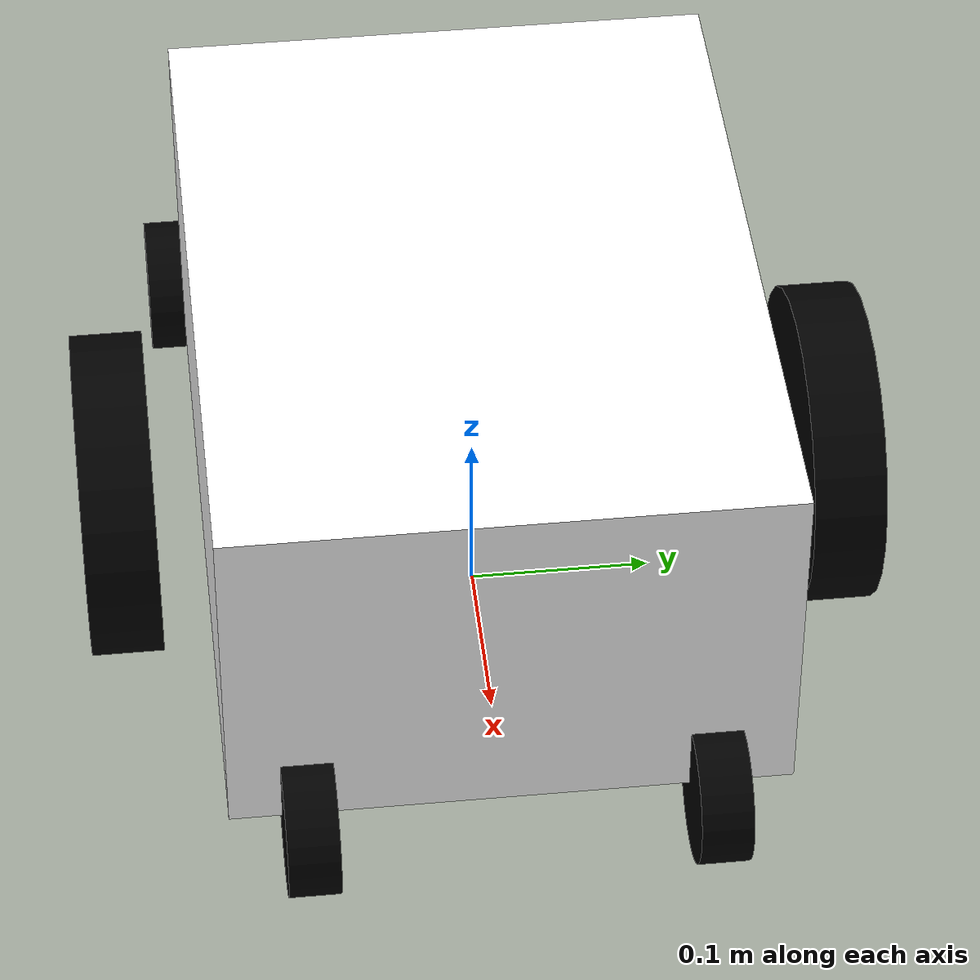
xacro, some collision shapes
<?xml version="1.0"?>

<robot xmlns:xacro="http://www.ros.org/wiki/xacro" >

    <material name="blue">
        <color rgba="0 0 0.8 1"/>
    </material>
    <material name="black">
        <color rgba="0 0 0 1"/>
    </material>
    <material name="white">
        <color rgba="1 1 1 1"/>
    </material>
    <material name="red">
        <color rgba="1 0 0 1"/>
    </material>

    <!-- Base Link-->
    <link name="base_link">
    </link>

    <!-- BASE_FOOTPRINT LINK -->

    <joint name="base_footprint_joint" type="fixed">
        <parent link="base_link"/>
        <child link="base_footprint"/>
        <origin xyz="0 0 0" rpy="0 0 0"/>
    </joint>

    <link name="base_footprint">
    </link>

    <!-- Chassis Link or Main Body -->
    <link name="chassis">
    <visual>
        <origin rpy="1.5707963267949 0 1.5707963267949" xyz="0 0 0"/>

        <geometry>
         <mesh filename="file:///home/schaeffler/schaeffler/src/emma_visualization/meshes/AMR_Platform.STL"/>

        </geometry>
        <material name="white"/>

    </visual>

    <collision>
        <origin rpy="0 0 0" xyz="0 0 0.05"/>
        <geometry>
        <box size="0.4 0.3 0.2"/>
        </geometry>
    </collision>

    <inertial>
        <mass value="4.07"/>
        <inertia ixx="0.426" ixy="0.0" ixz="0.0" iyy="0.496" iyz="0.0" izz="0.91"/>
    </inertial>
    </link>
    <gazebo reference="chassis">
        <material>Gazebo/white</material>
    </gazebo>
    <!-- Chassis Joint-->
    <joint name="chassis_joint" type="fixed">

        <parent link="base_link"/>
        <child link="chassis"/>
        <origin xyz="0.0 0.0 0.085"/>

    </joint>

    <!-- Chassis Link or Main Body-->

    <link name="left_wheel">
        <visual>
            <origin xyz="0 0 0" rpy="1.5707963267949 0 0" />
            <geometry>
                <cylinder radius="0.088" length="0.03937"/>
            </geometry>
            <material name="black"/>
        </visual>

        <collision>
            <origin xyz="0 0 0" rpy="1.5707963267949 0 0"/>
            <geometry>
                <cylinder radius="0.088" length="0.03937"/>
            </geometry>
        </collision>

        <inertial>
            <mass value="0.17"/>
            <inertia ixx="0.000204" ixy="0.0" ixz="0.0" iyy="0.000306" iyz="0.0" izz="0.000204"/>
        </inertial>
    </link>
    <gazebo reference="left_wheel">
        <material>Gazebo/black</material>
    </gazebo>
    <joint name="left_wheel_joint" type="continuous">
            <parent link="chassis"/>
            <child link="left_wheel"/>
            <origin xyz="0 0.196425 0.000881" rpy="0 0 0"/>
            <axis xyz="0 1 0"/>
    </joint>

    <link name="right_wheel">
        <visual>
            <origin xyz="0 0 0" rpy="1.5707963267949 0 0" />
            <geometry>
                <cylinder radius="0.088" length="0.03937"/>
            </geometry>
            <material name="black"/>
        </visual>

        <collision>
            <origin xyz="0 0 0" rpy="1.5707963267949 0 0"/>
            <geometry>
                <cylinder radius="0.088" length="0.03937"/>
            </geometry>
        </collision>

        <inertial>
            <mass value="0.17"/>
            <inertia ixx="0.000204" ixy="0.0" ixz="0.0" iyy="0.000306" iyz="0.0" izz="0.000204"/>
        </inertial>
    </link>
    <gazebo reference="right_wheel">
        <material>Gazebo/black</material>
    </gazebo>
    <joint name="right_wheel_joint" type="continuous">
            <parent link="chassis"/>
            <child link="right_wheel"/>
            <origin xyz="0 -0.196425 0.000881" rpy="0 0 0"/>
            <axis xyz="0 1 0"/>
    </joint>

    <link name="right_front_small_wheel">
        <visual>
            <origin xyz="0 0 0" rpy="1.5707963267949 0 0"/>
            <geometry>
                <cylinder length="0.02775" radius="0.0375"/>
            </geometry>
            <material name="black"/>
        </visual>
        <collision>
            <origin xyz="0 0 0" rpy="1.5707963267949 0 0"/>
            <geometry>
                <cylinder length="0.02775" radius="0.0375"/>
            </geometry>
        </collision>
        <inertial>
            <mass value="0.17"/>
            <inertia ixx="0.000204" ixy="0.0" ixz="0.0" iyy="0.000306" iyz="0.0" izz="0.000204"/>
        </inertial>
    </link>
    <gazebo reference="right_front_small_wheel">
        <material>Gazebo/black</material>
    </gazebo>

    <joint name="right_front_small_wheel_joint" type="fixed">
        <axis rpy="0 0 0" xyz="0 1 0"/>
        <parent link="chassis"/>
        <child link="right_front_small_wheel"/>
        <origin xyz="0.209 -0.108 -0.049" rpy="0 0 0"/>
    </joint>

    <link name="left_front_small_wheel">
        <visual>
            <origin xyz="0 0 0" rpy="1.5707963267949 0 0"/>
            <geometry>
                <cylinder length="0.02775" radius="0.0375"/>
            </geometry>
            <material name="black"/>
        </visual>
        <collision>
            <origin xyz="0 0 0" rpy="1.5707963267949 0 0"/>
            <geometry>
                <cylinder length="0.02775" radius="0.0375"/>
            </geometry>
        </collision>
        <inertial>
            <mass value="0.17"/>
            <inertia ixx="0.000204" ixy="0.0" ixz="0.0" iyy="0.000306" iyz="0.0" izz="0.000204"/>
        </inertial>
    </link>
    <gazebo reference="left_front_small_wheel">
        <material>Gazebo/black</material>
    </gazebo>

    <joint name="left_front_small_wheel_joint" type="fixed">
        <axis rpy="0 0 0" xyz="0 1 0"/>
        <parent link="chassis"/>
        <child link="left_front_small_wheel"/>
        <origin  xyz="0.209 0.108 -0.049" rpy="0 0 0"/>
    </joint>

    <link name="left_back_small_wheel">
        <visual>
            <origin xyz="0 0 0" rpy="1.5707963267949 0 0" />
            <geometry>
                <cylinder length="0.02775" radius="0.0375"/>
            </geometry>
            <material name="black"/>
        </visual>
        <collision>
            <origin xyz="0 0 0" rpy="1.5707963267949 0 0" />
            <geometry>
                <cylinder length="0.02775" radius="0.0375"/>
            </geometry>
        </collision>
        <inertial>
            <mass value="0.17"/>
            <inertia ixx="0.000204" ixy="0.0" ixz="0.0" iyy="0.000306" iyz="0.0" izz="0.000204"/>
        </inertial>
    </link>
     <gazebo reference="left_back_small_wheel">
        <material>Gazebo/black</material>
    </gazebo>

    <joint name="left_back_small_wheel_joint" type="fixed">
        <axis rpy="0 0 0" xyz="0 1 0"/>
        <parent link="chassis"/>
        <child link="left_back_small_wheel"/>
        <origin xyz="-0.228 0.156 -0.049" rpy="0 0 0" />
    </joint>

    <link name="right_back_small_wheel">
        <visual>
            <origin xyz="0 0 0" rpy="1.5707963267949 0 0" />
            <geometry>
                <cylinder length="0.02775" radius="0.0375"/>
            </geometry>
            <material name="black"/>
        </visual>
        <collision>
            <origin xyz="0 0 0" rpy="1.5707963267949 0 0" />
            <geometry>
                <cylinder length="0.02775" radius="0.0375"/>
            </geometry>
        </collision>
        <inertial>
            <mass value="0.17"/>
            <inertia ixx="0.000204" ixy="0.0" ixz="0.0" iyy="0.000306" iyz="0.0" izz="0.000204"/>
        </inertial>
    </link>
    <gazebo reference="right_back_small_wheel">
        <material>Gazebo/black</material>
    </gazebo>
    <joint name="right_back_small_wheel_joint" type="fixed">
        <axis rpy="0 0 0" xyz="0 1 0"/>
        <parent link="chassis"/>
        <child link="right_back_small_wheel"/>
        <origin xyz="-0.228 -0.156 -0.049" rpy="0 0 0" />
    </joint>

</robot>
